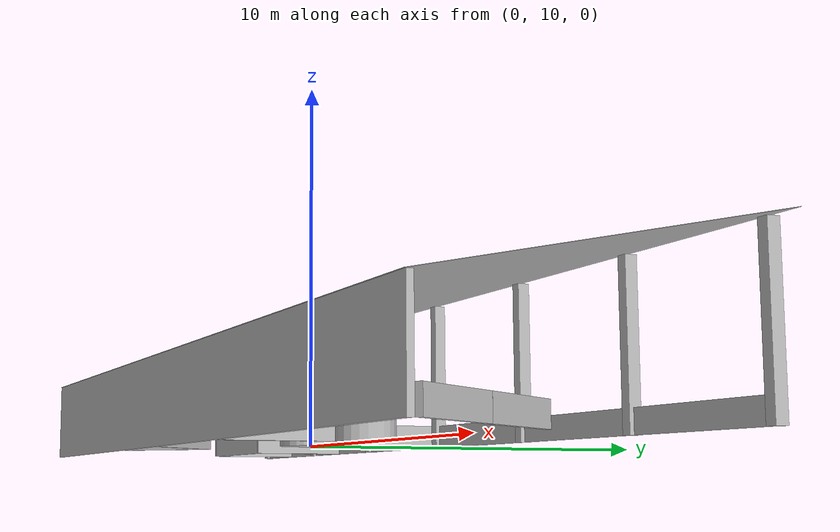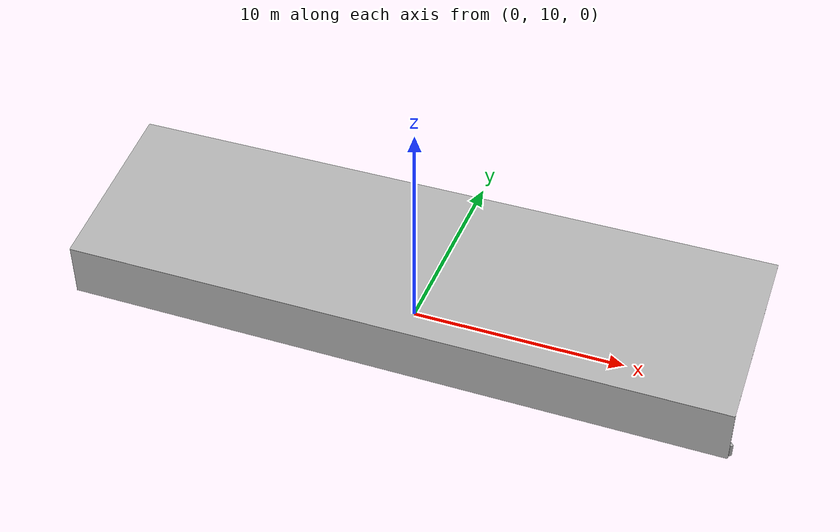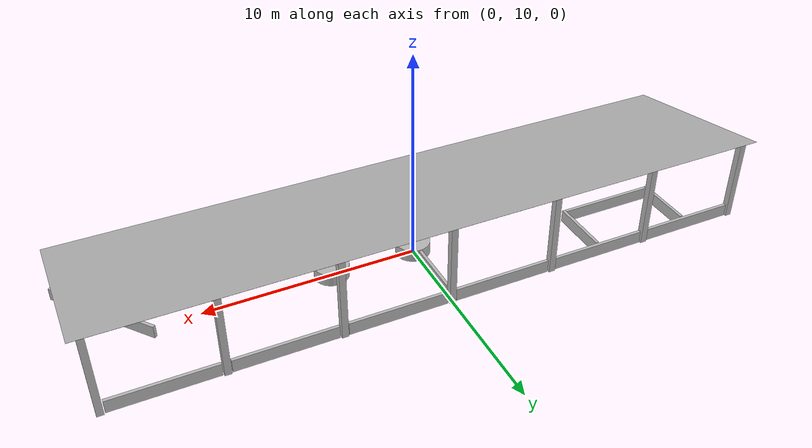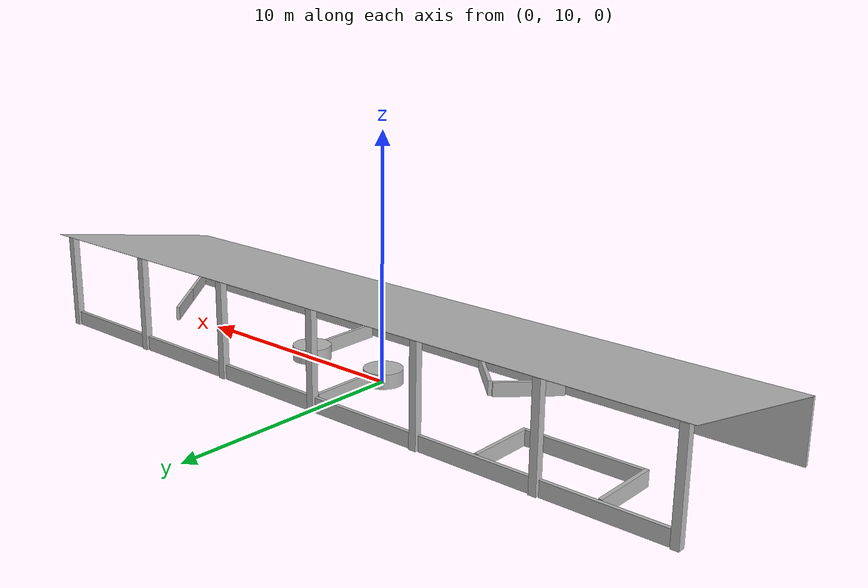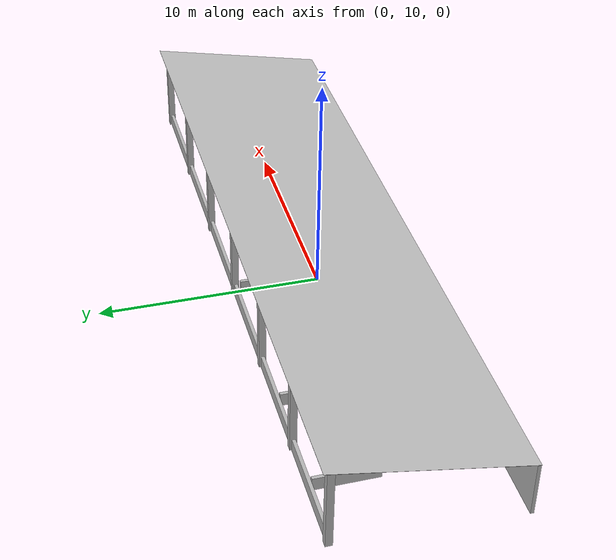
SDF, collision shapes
<?xml version="1.0" ?>
<sdf version="1.5">
 <model name='tunnel'>
      <static>1</static>
      <link name='upright_0'>
      <pose frame=''>-15 13.85 0 0 -0 0</pose>
        <collision name='upright_01'>
          <pose frame=''>-0 0 2 0 -0 0</pose>
          <geometry>
            <box>
              <size>0.3 0.3 4</size>
            </box>
          </geometry>
          <max_contacts>10</max_contacts>
          <surface>
            <contact>
              <ode/>
            </contact>
            <bounce/>
            <friction>
              <torsional>
                <ode/>
              </torsional>
              <ode/>
            </friction>
          </surface>
        </collision>
        <visual name='visual'>
          <geometry>
            <mesh>
              <uri>model://tunnel/meshes/upright.dae</uri>
            </mesh>
          </geometry>
        </visual>
        <self_collide>0</self_collide>
        <enable_wind>0</enable_wind>
        <kinematic>0</kinematic>
      </link>
      <link name='upright_1'>
      <pose frame=''>-10 13.85 0 0 -0 0</pose>
        <collision name='upright_01'>
          <pose frame=''>-0 0 2 0 -0 0</pose>
          <geometry>
            <box>
              <size>0.3 0.3 4</size>
            </box>
          </geometry>
          <max_contacts>10</max_contacts>
          <surface>
            <contact>
              <ode/>
            </contact>
            <bounce/>
            <friction>
              <torsional>
                <ode/>
              </torsional>
              <ode/>
            </friction>
          </surface>
        </collision>
        <visual name='visual'>
          <geometry>
            <mesh>
              <uri>model://tunnel/meshes/upright.dae</uri>
            </mesh>
          </geometry>
        </visual>
        <self_collide>0</self_collide>
        <enable_wind>0</enable_wind>
        <kinematic>0</kinematic>
      </link>
      <link name='upright_2'>
      <pose frame=''>-5 13.85 0 0 -0 0</pose>
        <collision name='upright_01'>
          <pose frame=''>-0 0 2 0 -0 0</pose>
          <geometry>
            <box>
              <size>0.3 0.3 4</size>
            </box>
          </geometry>
          <max_contacts>10</max_contacts>
          <surface>
            <contact>
              <ode/>
            </contact>
            <bounce/>
            <friction>
              <torsional>
                <ode/>
              </torsional>
              <ode/>
            </friction>
          </surface>
        </collision>
        <visual name='visual'>
          <geometry>
            <mesh>
              <uri>model://tunnel/meshes/upright.dae</uri>
            </mesh>
          </geometry>
        </visual>
        <self_collide>0</self_collide>
        <enable_wind>0</enable_wind>
        <kinematic>0</kinematic>
      </link>
      <link name='upright_3'>
      <pose frame=''>0 13.85 0 0 -0 0</pose>
        <collision name='upright_01'>
          <pose frame=''>-0 0 2 0 -0 0</pose>
          <geometry>
            <box>
              <size>0.3 0.3 4</size>
            </box>
          </geometry>
          <max_contacts>10</max_contacts>
          <surface>
            <contact>
              <ode/>
            </contact>
            <bounce/>
            <friction>
              <torsional>
                <ode/>
              </torsional>
              <ode/>
            </friction>
          </surface>
        </collision>
        <visual name='visual'>
          <geometry>
            <mesh>
              <uri>model://tunnel/meshes/upright.dae</uri>
            </mesh>
          </geometry>
        </visual>
        <self_collide>0</self_collide>
        <enable_wind>0</enable_wind>
        <kinematic>0</kinematic>
      </link>
      <link name='upright_4'>
        <pose frame=''>5 13.85 0 0 -0 0</pose>
        <collision name='upright_01'>
          <pose frame=''>-0 0 2 0 -0 0</pose>
          <geometry>
            <box>
              <size>0.3 0.3 4</size>
            </box>
          </geometry>
          <max_contacts>10</max_contacts>
          <surface>
            <contact>
              <ode/>
            </contact>
            <bounce/>
            <friction>
              <torsional>
                <ode/>
              </torsional>
              <ode/>
            </friction>
          </surface>
        </collision>
        <visual name='visual'>
          <geometry>
            <mesh>
              <uri>model://tunnel/meshes/upright.dae</uri>
            </mesh>
          </geometry>
        </visual>
        <self_collide>0</self_collide>
        <enable_wind>0</enable_wind>
        <kinematic>0</kinematic>
      </link>
      <link name='upright_5'>
        <pose frame=''>10 13.85 0 0 -0 0</pose>
        <collision name='upright_01'>
          <pose frame=''>-0 0 2 0 -0 0</pose>
          <geometry>
            <box>
              <size>0.3 0.3 4</size>
            </box>
          </geometry>
          <max_contacts>10</max_contacts>
          <surface>
            <contact>
              <ode/>
            </contact>
            <bounce/>
            <friction>
              <torsional>
                <ode/>
              </torsional>
              <ode/>
            </friction>
          </surface>
        </collision>
        <visual name='visual'>
          <geometry>
            <mesh>
              <uri>model://tunnel/meshes/upright.dae</uri>
            </mesh>
          </geometry>
        </visual>
        <self_collide>0</self_collide>
        <enable_wind>0</enable_wind>
        <kinematic>0</kinematic>
      </link>
      <link name='upright_6'>
      <pose frame=''>15 13.85 0 0 -0 0</pose>
        <collision name='upright_01'>
          <pose frame=''>-0 0 2 0 -0 0</pose>
          <geometry>
            <box>
              <size>0.3 0.3 4</size>
            </box>
          </geometry>
          <max_contacts>10</max_contacts>
          <surface>
            <contact>
              <ode/>
            </contact>
            <bounce/>
            <friction>
              <torsional>
                <ode/>
              </torsional>
              <ode/>
            </friction>
          </surface>
        </collision>
        <visual name='visual'>
          <geometry>
            <mesh>
              <uri>model://tunnel/meshes/upright.dae</uri>
            </mesh>
          </geometry>
        </visual>
        <self_collide>0</self_collide>
        <enable_wind>0</enable_wind>
        <kinematic>0</kinematic>
      </link>
      <link name='wall'>
        <pose frame=''>0 6.1 0 0 -0 0</pose>
        <collision name='wall_01'>
          <pose frame=''>-0 0 1.25 0 -0 0</pose>
          <geometry>
            <box>
              <size>31 0.15 2.5</size>
            </box>
          </geometry>
          <max_contacts>10</max_contacts>
          <surface>
            <contact>
              <ode/>
            </contact>
            <bounce/>
            <friction>
              <torsional>
                <ode/>
              </torsional>
              <ode/>
            </friction>
          </surface>
        </collision>
        <collision name='collision_roof_0'>
          <pose frame=''>0 4.025 3.32 0.195 -0 0</pose>
          <geometry>
            <box>
              <size>31 8.4 0.01</size>
            </box>
          </geometry>
          <max_contacts>10</max_contacts>
          <surface>
            <contact>
              <ode/>
            </contact>
            <bounce/>
            <friction>
              <torsional>
                <ode/>
              </torsional>
              <ode/>
            </friction>
          </surface>
        </collision>
        <visual name='visual'>
          <geometry>
            <mesh>
              <uri>model://tunnel/meshes/wall.dae</uri>
            </mesh>
          </geometry>
        </visual>
        <visual name='visual_roof_0'>
          <pose frame=''>0 4.025 3.32 0.195 -0 0</pose>
          <geometry>
            <box>
              <size>31 8.4 0.01</size>
            </box>
          </geometry>
          <material>
            <script>
              <uri>model://tunnel/materials/scripts</uri>
              <uri>model://tunnel/materials/textures</uri>
              <name>wall/Roof</name>
            </script>
          </material>
        </visual>
        <self_collide>0</self_collide>
        <enable_wind>0</enable_wind>
        <kinematic>0</kinematic>
      </link>
      <link name='concrete_barrier_l_1'>
      <pose frame=''>12.5 13.85 0 0 -0 0</pose>
        <collision name='concrete_barrier_l_01'>
          <pose frame=''>-0 0 0.3 0 -0 0</pose>
          <geometry>
            <box>
              <size>4.6 0.15 0.6</size>
            </box>
          </geometry>
          <max_contacts>10</max_contacts>
          <surface>
            <contact>
              <ode/>
            </contact>
            <bounce/>
            <friction>
              <torsional>
                <ode/>
              </torsional>
              <ode/>
            </friction>
          </surface>
        </collision>
        <visual name='visual'>
          <geometry>
            <mesh>
              <uri>model://tunnel/meshes/concrete_barrier_l.dae</uri>
            </mesh>
          </geometry>
        </visual>
        <self_collide>0</self_collide>
        <enable_wind>0</enable_wind>
        <kinematic>0</kinematic>
      </link>
      <link name='concrete_barrier_l_2'>
      <pose frame=''>7.5 13.85 0 0 -0 0</pose>
        <collision name='concrete_barrier_l_01'>
          <pose frame=''>-0 0 0.3 0 -0 0</pose>
          <geometry>
            <box>
              <size>4.6 0.15 0.6</size>
            </box>
          </geometry>
          <max_contacts>10</max_contacts>
          <surface>
            <contact>
              <ode/>
            </contact>
            <bounce/>
            <friction>
              <torsional>
                <ode/>
              </torsional>
              <ode/>
            </friction>
          </surface>
        </collision>
        <visual name='visual'>
          <geometry>
            <mesh>
              <uri>model://tunnel/meshes/concrete_barrier_l.dae</uri>
            </mesh>
          </geometry>
        </visual>
        <self_collide>0</self_collide>
        <enable_wind>0</enable_wind>
        <kinematic>0</kinematic>
      </link>
      <link name='concrete_barrier_l_3'>
      <pose frame=''>2.5 13.85 0 0 -0 0</pose>
        <collision name='concrete_barrier_l_01'>
          <pose frame=''>-0 0 0.3 0 -0 0</pose>
          <geometry>
            <box>
              <size>4.6 0.15 0.6</size>
            </box>
          </geometry>
          <max_contacts>10</max_contacts>
          <surface>
            <contact>
              <ode/>
            </contact>
            <bounce/>
            <friction>
              <torsional>
                <ode/>
              </torsional>
              <ode/>
            </friction>
          </surface>
        </collision>
        <visual name='visual'>
          <geometry>
            <mesh>
              <uri>model://tunnel/meshes/concrete_barrier_l.dae</uri>
            </mesh>
          </geometry>
        </visual>
        <self_collide>0</self_collide>
        <enable_wind>0</enable_wind>
        <kinematic>0</kinematic>
      </link>
      <link name='concrete_barrier_l_4'>
      <pose frame=''>-2.5 13.85 0 0 -0 0</pose>
        <collision name='concrete_barrier_l_01'>
          <pose frame=''>-0 0 0.3 0 -0 0</pose>
          <geometry>
            <box>
              <size>4.6 0.15 0.6</size>
            </box>
          </geometry>
          <max_contacts>10</max_contacts>
          <surface>
            <contact>
              <ode/>
            </contact>
            <bounce/>
            <friction>
              <torsional>
                <ode/>
              </torsional>
              <ode/>
            </friction>
          </surface>
        </collision>
        <visual name='visual'>
          <geometry>
            <mesh>
              <uri>model://tunnel/meshes/concrete_barrier_l.dae</uri>
            </mesh>
          </geometry>
        </visual>
        <self_collide>0</self_collide>
        <enable_wind>0</enable_wind>
        <kinematic>0</kinematic>
      </link>
      <link name='concrete_barrier_l_5'>
      <pose frame=''>-7.5 13.85 0 0 -0 0</pose>
        <collision name='concrete_barrier_l_01'>
          <pose frame=''>-0 0 0.3 0 -0 0</pose>
          <geometry>
            <box>
              <size>4.6 0.15 0.6</size>
            </box>
          </geometry>
          <max_contacts>10</max_contacts>
          <surface>
            <contact>
              <ode/>
            </contact>
            <bounce/>
            <friction>
              <torsional>
                <ode/>
              </torsional>
              <ode/>
            </friction>
          </surface>
        </collision>
        <visual name='visual'>
          <geometry>
            <mesh>
              <uri>model://tunnel/meshes/concrete_barrier_l.dae</uri>
            </mesh>
          </geometry>
        </visual>
        <self_collide>0</self_collide>
        <enable_wind>0</enable_wind>
        <kinematic>0</kinematic>
      </link>
      <link name='concrete_barrier_l_6'>
      <pose frame=''>-12.5 13.85 0 0 -0 0</pose>
        <collision name='concrete_barrier_l_01'>
          <pose frame=''>-0 0 0.3 0 -0 0</pose>
          <geometry>
            <box>
              <size>4.6 0.15 0.6</size>
            </box>
          </geometry>
          <max_contacts>10</max_contacts>
          <surface>
            <contact>
              <ode/>
            </contact>
            <bounce/>
            <friction>
              <torsional>
                <ode/>
              </torsional>
              <ode/>
            </friction>
          </surface>
        </collision>
        <visual name='visual'>
          <geometry>
            <mesh>
              <uri>model://tunnel/meshes/concrete_barrier_l.dae</uri>
            </mesh>
          </geometry>
        </visual>
        <self_collide>0</self_collide>
        <enable_wind>0</enable_wind>
        <kinematic>0</kinematic>
      </link>
      <link name='concrete_barrier_m_1'>
      <pose frame=''>14.689 7.315 0 0 -0 2.246</pose>
        <collision name='concrete_barrier_m_01'>
          <pose frame=''>-0 0 0.3 0 -0 0</pose>
          <geometry>
            <box>
              <size>2.8 0.15 0.6</size>
            </box>
          </geometry>
          <max_contacts>10</max_contacts>
          <surface>
            <contact>
              <ode/>
            </contact>
            <bounce/>
            <friction>
              <torsional>
                <ode/>
              </torsional>
              <ode/>
            </friction>
          </surface>
        </collision>
        <visual name='visual'>
          <geometry>
            <mesh>
              <uri>model://tunnel/meshes/concrete_barrier_m.dae</uri>
            </mesh>
          </geometry>
        </visual>
        <self_collide>0</self_collide>
        <enable_wind>0</enable_wind>
        <kinematic>0</kinematic>
      </link>
      <link name='concrete_barrier_m_2'>
      <pose frame=''>12.94 9.5 0 0 -0 2.246</pose>
        <collision name='concrete_barrier_m_01'>
          <pose frame=''>-0 0 0.3 0 -0 0</pose>
          <geometry>
            <box>
              <size>2.8 0.15 0.6</size>
            </box>
          </geometry>
          <max_contacts>10</max_contacts>
          <surface>
            <contact>
              <ode/>
            </contact>
            <bounce/>
            <friction>
              <torsional>
                <ode/>
              </torsional>
              <ode/>
            </friction>
          </surface>
        </collision>
        <visual name='visual'>
          <geometry>
            <mesh>
              <uri>model://tunnel/meshes/concrete_barrier_m.dae</uri>
            </mesh>
          </geometry>
        </visual>
        <self_collide>0</self_collide>
        <enable_wind>0</enable_wind>
        <kinematic>0</kinematic>
      </link>
      <link name='round_concrete_base_1'>
      <pose frame=''>4 9.95 0 0 -0 0</pose>
        <collision name='round_concrete_base_01'>
          <pose frame=''>-0 0 0.3 0 -0 0</pose>
          <geometry>
            <cylinder>
              <radius>0.8</radius>
              <length>0.6</length>
            </cylinder>
          </geometry>
          <max_contacts>10</max_contacts>
          <surface>
            <contact>
              <ode/>
            </contact>
            <bounce/>
            <friction>
              <torsional>
                <ode/>
              </torsional>
              <ode/>
            </friction>
          </surface>
        </collision>
        <visual name='visual'>
          <geometry>
            <mesh>
              <uri>model://tunnel/meshes/round_concrete_base.dae</uri>
            </mesh>
          </geometry>
        </visual>
        <self_collide>0</self_collide>
        <enable_wind>0</enable_wind>
        <kinematic>0</kinematic>
      </link>
      <link name='concrete_barrier_m_3'>
      <pose frame=''>4 7.75 0 0 -0 1.57675</pose>
        <collision name='concrete_barrier_m_01'>
          <pose frame=''>-0 0 0.3 0 -0 0</pose>
          <geometry>
            <box>
              <size>2.8 0.15 0.6</size>
            </box>
          </geometry>
          <max_contacts>10</max_contacts>
          <surface>
            <contact>
              <ode/>
            </contact>
            <bounce/>
            <friction>
              <torsional>
                <ode/>
              </torsional>
              <ode/>
            </friction>
          </surface>
        </collision>
        <visual name='visual'>
          <geometry>
            <mesh>
              <uri>model://tunnel/meshes/concrete_barrier_m.dae</uri>
            </mesh>
          </geometry>
        </visual>
        <self_collide>0</self_collide>
        <enable_wind>0</enable_wind>
        <kinematic>0</kinematic>
      </link>
      <link name='round_concrete_base_2'>
      <pose frame=''>0 9.95 0 0 -0 0</pose>
        <collision name='round_concrete_base_01'>
          <pose frame=''>-0 0 0.3 0 -0 0</pose>
          <geometry>
            <cylinder>
              <radius>0.8</radius>
              <length>0.6</length>
            </cylinder>
          </geometry>
          <max_contacts>10</max_contacts>
          <surface>
            <contact>
              <ode/>
            </contact>
            <bounce/>
            <friction>
              <torsional>
                <ode/>
              </torsional>
              <ode/>
            </friction>
          </surface>
        </collision>
        <visual name='visual'>
          <geometry>
            <mesh>
              <uri>model://tunnel/meshes/round_concrete_base.dae</uri>
            </mesh>
          </geometry>
        </visual>
        <self_collide>0</self_collide>
        <enable_wind>0</enable_wind>
        <kinematic>0</kinematic>
      </link>
      <link name='concrete_barrier_m_4'>
      <pose frame=''>0 12.2 0 0 -0 1.57675</pose>
        <collision name='concrete_barrier_m_01'>
          <pose frame=''>-0 0 0.3 0 -0 0</pose>
          <geometry>
            <box>
              <size>2.8 0.15 0.6</size>
            </box>
          </geometry>
          <max_contacts>10</max_contacts>
          <surface>
            <contact>
              <ode/>
            </contact>
            <bounce/>
            <friction>
              <torsional>
                <ode/>
              </torsional>
              <ode/>
            </friction>
          </surface>
        </collision>
        <visual name='visual'>
          <geometry>
            <mesh>
              <uri>model://tunnel/meshes/concrete_barrier_m.dae</uri>
            </mesh>
          </geometry>
        </visual>
        <self_collide>0</self_collide>
        <enable_wind>0</enable_wind>
        <kinematic>0</kinematic>
      </link>
      <link name='concrete_barrier_m_5'>
      <pose frame=''>-7.54 12.325 0 0 -0 1.57675</pose>
        <collision name='concrete_barrier_m_01'>
          <pose frame=''>-0 0 0.3 0 -0 0</pose>
          <geometry>
            <box>
              <size>2.8 0.15 0.6</size>
            </box>
          </geometry>
          <max_contacts>10</max_contacts>
          <surface>
            <contact>
              <ode/>
            </contact>
            <bounce/>
            <friction>
              <torsional>
                <ode/>
              </torsional>
              <ode/>
            </friction>
          </surface>
        </collision>
        <visual name='visual'>
          <geometry>
            <mesh>
              <uri>model://tunnel/meshes/concrete_barrier_m.dae</uri>
            </mesh>
          </geometry>
        </visual>
        <self_collide>0</self_collide>
        <enable_wind>0</enable_wind>
        <kinematic>0</kinematic>
      </link>
      <link name='concrete_barrier_l_7'>
        <pose frame=''>-9.91 11 0 0 -0 0</pose>
        <collision name='concrete_barrier_l_01'>
          <pose frame=''>-0 0 0.3 0 -0 0</pose>
          <geometry>
            <box>
              <size>4.6 0.15 0.6</size>
            </box>
          </geometry>
          <max_contacts>10</max_contacts>
          <surface>
            <contact>
              <ode/>
            </contact>
            <bounce/>
            <friction>
              <torsional>
                <ode/>
              </torsional>
              <ode/>
            </friction>
          </surface>
        </collision>
        <visual name='visual'>
          <geometry>
            <mesh>
              <uri>model://tunnel/meshes/concrete_barrier_l.dae</uri>
            </mesh>
          </geometry>
        </visual>
        <self_collide>0</self_collide>
        <enable_wind>0</enable_wind>
        <kinematic>0</kinematic>
      </link>
      <link name='concrete_barrier_m_6'>
      <pose frame=''>-12.3 12.325 0 0 -0 1.57675</pose>
        <collision name='concrete_barrier_m_01'>
          <pose frame=''>-0 0 0.3 0 -0 0</pose>
          <geometry>
            <box>
              <size>2.8 0.15 0.6</size>
            </box>
          </geometry>
          <max_contacts>10</max_contacts>
          <surface>
            <contact>
              <ode/>
            </contact>
            <bounce/>
            <friction>
              <torsional>
                <ode/>
              </torsional>
              <ode/>
            </friction>
          </surface>
        </collision>
        <visual name='visual'>
          <geometry>
            <mesh>
              <uri>model://tunnel/meshes/concrete_barrier_m.dae</uri>
            </mesh>
          </geometry>
        </visual>
        <self_collide>0</self_collide>
        <enable_wind>0</enable_wind>
        <kinematic>0</kinematic>
      </link>
      <link name='concrete_barrier_m_7'>
      <pose frame=''>-2.95 7.25 0 0 0 -0.7854</pose>
        <collision name='concrete_barrier_m_01'>
          <pose frame=''>-0 0 0.3 0 -0 0</pose>
          <geometry>
            <box>
              <size>2.8 0.15 0.6</size>
            </box>
          </geometry>
          <max_contacts>10</max_contacts>
          <surface>
            <contact>
              <ode/>
            </contact>
            <bounce/>
            <friction>
              <torsional>
                <ode/>
              </torsional>
              <ode/>
            </friction>
          </surface>
        </collision>
        <visual name='visual'>
          <geometry>
            <mesh>
              <uri>model://tunnel/meshes/concrete_barrier_m.dae</uri>
            </mesh>
          </geometry>
        </visual>
        <self_collide>0</self_collide>
        <enable_wind>0</enable_wind>
        <kinematic>0</kinematic>
      </link>
      <link name='concrete_barrier_m_8'>
      <pose frame=''>-5.05 7.25 0 0 -0 0.7854</pose>
        <collision name='concrete_barrier_m_01'>
          <pose frame=''>-0 0 0.3 0 -0 0</pose>
          <geometry>
            <box>
              <size>2.8 0.15 0.6</size>
            </box>
          </geometry>
          <max_contacts>10</max_contacts>
          <surface>
            <contact>
              <ode/>
            </contact>
            <bounce/>
            <friction>
              <torsional>
                <ode/>
              </torsional>
              <ode/>
            </friction>
          </surface>
        </collision>
        <visual name='visual'>
          <geometry>
            <mesh>
              <uri>model://tunnel/meshes/concrete_barrier_m.dae</uri>
            </mesh>
          </geometry>
        </visual>
        <self_collide>0</self_collide>
        <enable_wind>0</enable_wind>
        <kinematic>0</kinematic>
      </link>
      </model>
</sdf>
